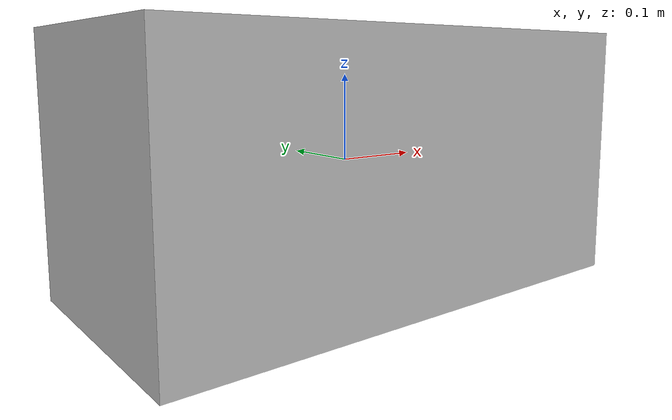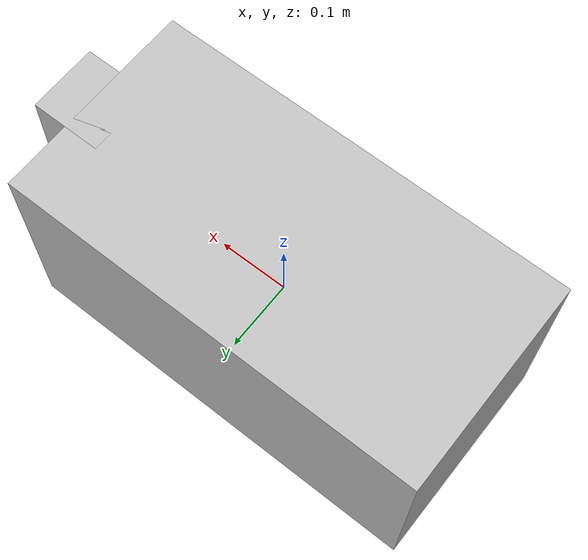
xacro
<?xml version="1.0"?>
<robot name="make_robot">
  <link name="base_link">
    <visual>
      <geometry>
        <box size="0.6 0.3 0.3"/>
      </geometry>
      <material name="silver">
        <color rgba="0.75 0.75 0.75 1"/>
      </material>
    </visual>
  </link>

  <link name="front_caster">
    <visual>
      <geometry>
        <box size="0.1 0.1 0.3"/>
      </geometry>
      <material name="silver"/>
    </visual>
  </link>

  <joint name="front_caster_joint" type="continuous">
    <parent link="base_link"/>
    <child link="front_caster"/>
    <axis xyz="0 0 1"/>
    <origin rpy="0 0 0" xyz="0.3 0 0 "/>
  </joint>

</robot>
